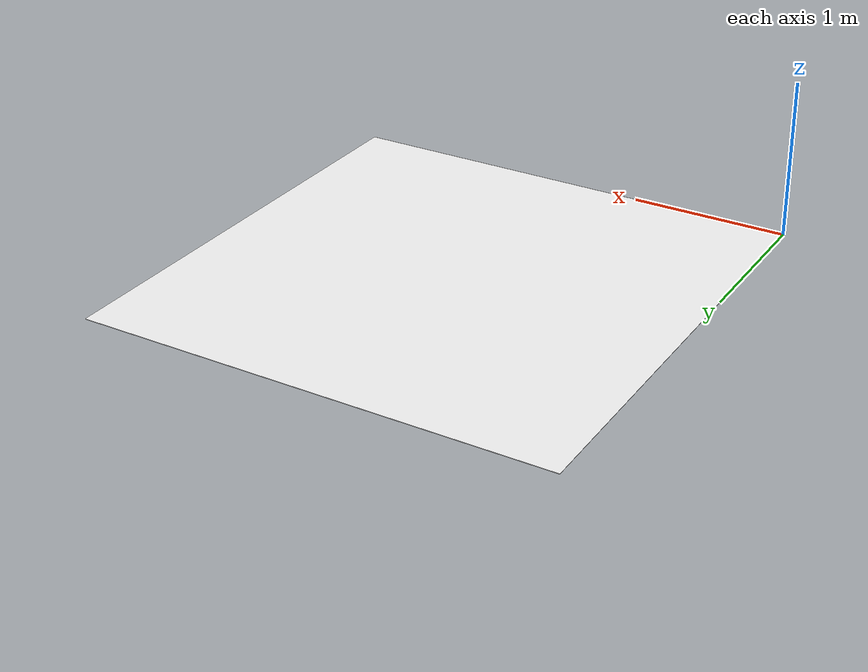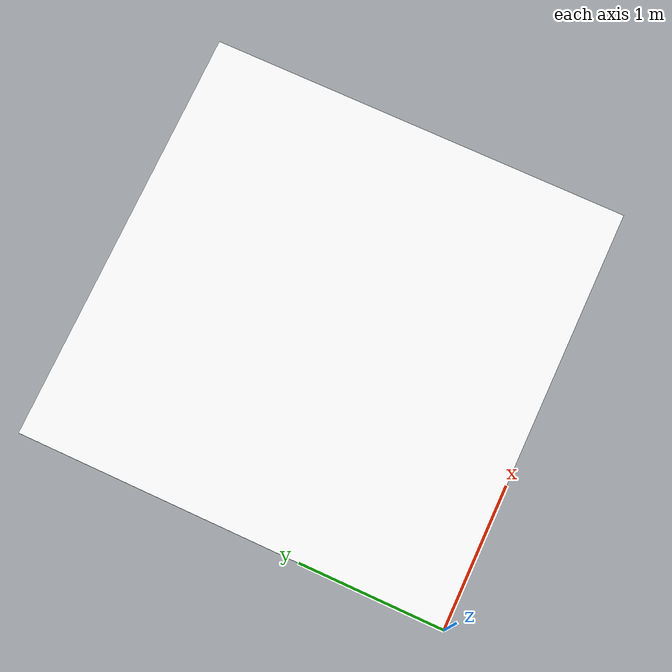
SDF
<?xml version="1.0" ?>
<sdf version="1.8">
  <world name="drono_start_arena">

    <plugin filename="gz-sim-physics-system" name="gz::sim::systems::Physics"></plugin>
    <plugin filename="gz-sim-user-commands-system" name="gz::sim::systems::UserCommands"></plugin>
    <plugin filename="gz-sim-scene-broadcaster-system" name="gz::sim::systems::SceneBroadcaster"></plugin>
    <plugin filename="gz-sim-sensors-system" name="gz::sim::systems::Sensors">
      <render_engine>ogre2</render_engine>
    </plugin>

    <light type="directional" name="sun">
      <cast_shadows>true</cast_shadows>
      <pose>0 0 10 0 0 0</pose>
      <diffuse>0.8 0.8 0.8 1</diffuse>
      <specular>0.2 0.2 0.2 1</specular>
      <direction>-0.5 0.1 -0.9</direction>
    </light>

    <model name="arena_floor">
      <static>true</static>
      <pose>1.5 1.5 0.0 0 0 0</pose>
      <link name="link">
        <visual name="visual">
          <geometry>
            <plane>
              <normal>0 0 1</normal>
              <size>3 3</size>
            </plane>
          </geometry>
          <material>
            <ambient>1 1 1 1</ambient>
            <diffuse>1 1 1 1</diffuse>
            <pbr>
              <metal>
                <albedo_map>model://arena_map/materials/textures/map.jpg</albedo_map>
              </metal>
            </pbr>
          </material>
        </visual>
        <collision name="collision">
          <geometry>
            <plane>
              <normal>0 0 1</normal>
              <size>3 3</size>
            </plane>
          </geometry>
        </collision>
      </link>
    </model>

  </world>
</sdf>
